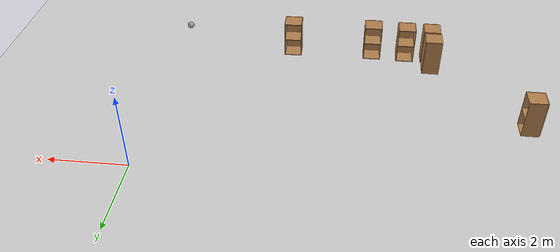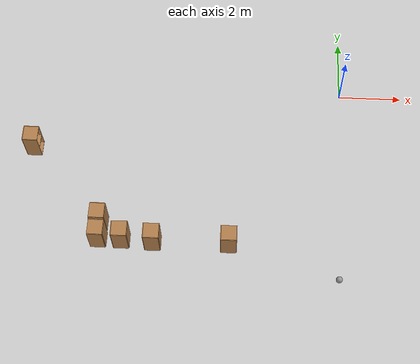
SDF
<sdf version="1.6">
 <world name="default">
  <model name="ground_plane">
   <static>1</static>
   <link name="link">
    <collision name="collision">
     <geometry><plane><normal>0 0 1</normal><size>100 100</size></plane></geometry>
     <surface>
      <contact><collide_bitmask>65535</collide_bitmask></contact>
      <friction><ode><mu>100</mu><mu2>50</mu2></ode></friction>
     </surface>
    </collision>
    <visual name="visual">
     <cast_shadows>0</cast_shadows>
     <geometry><plane><normal>0 0 1</normal><size>100 100</size></plane></geometry>
     <material>
      <script><uri>file://media/materials/scripts/gazebo.material</uri><name>Gazebo/Grey</name></script>
     </material>
    </visual>
   </link>
  </model>
  <model name="my_ball">
   <link name="link_0">
    <inertial>
     <mass>1</mass>
     <inertia><ixx>0.1</ixx><ixy>0</ixy><ixz>0</ixz><iyy>0.1</iyy><iyz>0</iyz><izz>0.1</izz></inertia>
    </inertial>
    <visual name="visual">
     <geometry><sphere><radius>0.1</radius></sphere></geometry>
     <material>
      <lighting>1</lighting>
      <script><uri>file://media/materials/scripts/gazebo.material</uri><name>Gazebo/Grey</name></script>
      <shader type="pixel"><normal_map>__default__</normal_map></shader>
      <ambient>1 1 1 1</ambient>
      <diffuse>1 1 1 1</diffuse>
      <specular>1 1 1 1</specular>
      <emissive>1 1 1 1</emissive>
     </material>
    </visual>
    <collision name="collision">
     <geometry><sphere><radius>0.1</radius></sphere></geometry>
     <surface>
      <friction>
       <ode><mu>1</mu><mu2>1</mu2><fdir1>0 0 0</fdir1><slip1>0</slip1><slip2>0</slip2></ode>
       <torsional>
        <coefficient>1</coefficient>
        <patch_radius>0</patch_radius>
        <surface_radius>0</surface_radius>
        <use_patch_radius>1</use_patch_radius>
        <ode><slip>0</slip></ode>
       </torsional>
      </friction>
      <bounce><restitution_coefficient>0</restitution_coefficient><threshold>1e+06</threshold></bounce>
      <contact>
       <collide_without_contact>0</collide_without_contact>
       <collide_without_contact_bitmask>1</collide_without_contact_bitmask>
       <collide_bitmask>1</collide_bitmask>
       <ode>
        <soft_cfm>0</soft_cfm>
        <soft_erp>0.2</soft_erp>
        <kp>1e+13</kp>
        <kd>1</kd>
        <max_vel>0.01</max_vel>
        <min_depth>0</min_depth>
       </ode>
       <bullet>
        <split_impulse>1</split_impulse>
        <split_impulse_penetration_threshold>-0.01</split_impulse_penetration_threshold>
        <soft_cfm>0</soft_cfm>
        <soft_erp>0.2</soft_erp>
        <kp>1e+13</kp>
        <kd>1</kd>
       </bullet>
      </contact>
     </surface>
    </collision>
   </link>
   <static>0</static>
   <pose>-0.063313 -6.29343 0.1 0 -0 0</pose>
  </model>
  <model name="cabinet_clone_clone">
   <static>1</static>
   <link name="cabinet_bottom_plate">
    <inertial>
     <pose>0 0 -1 0 -0 0</pose>
     <inertia><ixx>2.05</ixx><ixy>0</ixy><ixz>0</ixz><iyy>2.05</iyy><iyz>0</iyz><izz>2.05</izz></inertia>
     <mass>25</mass>
    </inertial>
    <collision name="cabinet_bottom_plate_geom">
     <pose>0 0 0.01 0 -0 0</pose>
     <geometry><box><size>0.45 0.45 0.02</size></box></geometry>
    </collision>
    <visual name="cabinet_bottom_plate_geom_visual">
     <pose>0 0 0.01 0 -0 0</pose>
     <geometry><box><size>0.45 0.45 0.02</size></box></geometry>
     <material>
      <script><uri>file://media/materials/scripts/gazebo.material</uri><name>Gazebo/Wood</name></script>
     </material>
    </visual>
    <collision name="cabinet_bottom_plate_geom_cabinet_back_plate">
     <pose>0.235 0 0.51 0 -0 0</pose>
     <geometry><box><size>0.02 0.45 1.02</size></box></geometry>
    </collision>
    <visual name="cabinet_bottom_plate_geom_cabinet_back_plate_visual">
     <pose>0.235 0 0.51 0 -0 0</pose>
     <geometry><box><size>0.02 0.45 1.02</size></box></geometry>
     <material>
      <script><uri>file://media/materials/scripts/gazebo.material</uri><name>Gazebo/Wood</name></script>
     </material>
    </visual>
    <collision name="cabinet_bottom_plate_geom_cabinet_left_plate">
     <pose>0 0.235 0.51 0 -0 0</pose>
     <geometry><box><size>0.45 0.02 1.02</size></box></geometry>
    </collision>
    <visual name="cabinet_bottom_plate_geom_cabinet_left_plate_visual">
     <pose>0 0.235 0.51 0 -0 0</pose>
     <geometry><box><size>0.45 0.02 1.02</size></box></geometry>
     <material>
      <script><uri>file://media/materials/scripts/gazebo.material</uri><name>Gazebo/Wood</name></script>
     </material>
    </visual>
    <collision name="cabinet_bottom_plate_geom_cabinet_middle_plate">
     <pose>0 0 0.51 0 -0 0</pose>
     <geometry><box><size>0.45 0.45 0.02</size></box></geometry>
    </collision>
    <visual name="cabinet_bottom_plate_geom_cabinet_middle_plate_visual">
     <pose>0 0 0.51 0 -0 0</pose>
     <geometry><box><size>0.45 0.45 0.02</size></box></geometry>
     <material>
      <script><uri>file://media/materials/scripts/gazebo.material</uri><name>Gazebo/Wood</name></script>
     </material>
    </visual>
    <collision name="cabinet_bottom_plate_geom_cabinet_right_plate">
     <pose>0 -0.235 0.51 0 -0 0</pose>
     <geometry><box><size>0.45 0.02 1.02</size></box></geometry>
    </collision>
    <visual name="cabinet_bottom_plate_geom_cabinet_right_plate_visual">
     <pose>0 -0.235 0.51 0 -0 0</pose>
     <geometry><box><size>0.45 0.02 1.02</size></box></geometry>
     <material>
      <script><uri>file://media/materials/scripts/gazebo.material</uri><name>Gazebo/Wood</name></script>
     </material>
    </visual>
    <collision name="cabinet_bottom_plate_geom_cabinet_top_plate">
     <pose>0 0 1.01 0 -0 0</pose>
     <geometry><box><size>0.45 0.45 0.02</size></box></geometry>
    </collision>
    <visual name="cabinet_bottom_plate_geom_cabinet_top_plate_visual">
     <pose>0 0 1.01 0 -0 0</pose>
     <geometry><box><size>0.45 0.45 0.02</size></box></geometry>
     <material>
      <script><uri>file://media/materials/scripts/gazebo.material</uri><name>Gazebo/Wood</name></script>
     </material>
    </visual>
   </link>
   <pose>-9.62196 -2.30495 0 0 -0 3.1415</pose>
  </model>
  <model name="cabinet_clone_clone_0">
   <static>1</static>
   <link name="cabinet_bottom_plate">
    <inertial>
     <pose>0 0 -1 0 -0 0</pose>
     <inertia><ixx>2.05</ixx><ixy>0</ixy><ixz>0</ixz><iyy>2.05</iyy><iyz>0</iyz><izz>2.05</izz></inertia>
     <mass>25</mass>
    </inertial>
    <collision name="cabinet_bottom_plate_geom">
     <pose>0 0 0.01 0 -0 0</pose>
     <geometry><box><size>0.45 0.45 0.02</size></box></geometry>
    </collision>
    <visual name="cabinet_bottom_plate_geom_visual">
     <pose>0 0 0.01 0 -0 0</pose>
     <geometry><box><size>0.45 0.45 0.02</size></box></geometry>
     <material>
      <script><uri>file://media/materials/scripts/gazebo.material</uri><name>Gazebo/Wood</name></script>
     </material>
    </visual>
    <collision name="cabinet_bottom_plate_geom_cabinet_back_plate">
     <pose>0.235 0 0.51 0 -0 0</pose>
     <geometry><box><size>0.02 0.45 1.02</size></box></geometry>
    </collision>
    <visual name="cabinet_bottom_plate_geom_cabinet_back_plate_visual">
     <pose>0.235 0 0.51 0 -0 0</pose>
     <geometry><box><size>0.02 0.45 1.02</size></box></geometry>
     <material>
      <script><uri>file://media/materials/scripts/gazebo.material</uri><name>Gazebo/Wood</name></script>
     </material>
    </visual>
    <collision name="cabinet_bottom_plate_geom_cabinet_left_plate">
     <pose>0 0.235 0.51 0 -0 0</pose>
     <geometry><box><size>0.45 0.02 1.02</size></box></geometry>
    </collision>
    <visual name="cabinet_bottom_plate_geom_cabinet_left_plate_visual">
     <pose>0 0.235 0.51 0 -0 0</pose>
     <geometry><box><size>0.45 0.02 1.02</size></box></geometry>
     <material>
      <script><uri>file://media/materials/scripts/gazebo.material</uri><name>Gazebo/Wood</name></script>
     </material>
    </visual>
    <collision name="cabinet_bottom_plate_geom_cabinet_middle_plate">
     <pose>0 0 0.51 0 -0 0</pose>
     <geometry><box><size>0.45 0.45 0.02</size></box></geometry>
    </collision>
    <visual name="cabinet_bottom_plate_geom_cabinet_middle_plate_visual">
     <pose>0 0 0.51 0 -0 0</pose>
     <geometry><box><size>0.45 0.45 0.02</size></box></geometry>
     <material>
      <script><uri>file://media/materials/scripts/gazebo.material</uri><name>Gazebo/Wood</name></script>
     </material>
    </visual>
    <collision name="cabinet_bottom_plate_geom_cabinet_right_plate">
     <pose>0 -0.235 0.51 0 -0 0</pose>
     <geometry><box><size>0.45 0.02 1.02</size></box></geometry>
    </collision>
    <visual name="cabinet_bottom_plate_geom_cabinet_right_plate_visual">
     <pose>0 -0.235 0.51 0 -0 0</pose>
     <geometry><box><size>0.45 0.02 1.02</size></box></geometry>
     <material>
      <script><uri>file://media/materials/scripts/gazebo.material</uri><name>Gazebo/Wood</name></script>
     </material>
    </visual>
    <collision name="cabinet_bottom_plate_geom_cabinet_top_plate">
     <pose>0 0 1.01 0 -0 0</pose>
     <geometry><box><size>0.45 0.45 0.02</size></box></geometry>
    </collision>
    <visual name="cabinet_bottom_plate_geom_cabinet_top_plate_visual">
     <pose>0 0 1.01 0 -0 0</pose>
     <geometry><box><size>0.45 0.45 0.02</size></box></geometry>
     <material>
      <script><uri>file://media/materials/scripts/gazebo.material</uri><name>Gazebo/Wood</name></script>
     </material>
    </visual>
   </link>
   <pose>-7.30602 -5.31161 0 0 0 -0.007029</pose>
  </model>
  <model name="cabinet_clone_clone_0_clone">
   <static>1</static>
   <link name="cabinet_bottom_plate">
    <inertial>
     <pose>0 0 -1 0 -0 0</pose>
     <inertia><ixx>2.05</ixx><ixy>0</ixy><ixz>0</ixz><iyy>2.05</iyy><iyz>0</iyz><izz>2.05</izz></inertia>
     <mass>25</mass>
    </inertial>
    <collision name="cabinet_bottom_plate_geom">
     <pose>0 0 0.01 0 -0 0</pose>
     <geometry><box><size>0.45 0.45 0.02</size></box></geometry>
    </collision>
    <visual name="cabinet_bottom_plate_geom_visual">
     <pose>0 0 0.01 0 -0 0</pose>
     <geometry><box><size>0.45 0.45 0.02</size></box></geometry>
     <material>
      <script><uri>file://media/materials/scripts/gazebo.material</uri><name>Gazebo/Wood</name></script>
     </material>
    </visual>
    <collision name="cabinet_bottom_plate_geom_cabinet_back_plate">
     <pose>0.235 0 0.51 0 -0 0</pose>
     <geometry><box><size>0.02 0.45 1.02</size></box></geometry>
    </collision>
    <visual name="cabinet_bottom_plate_geom_cabinet_back_plate_visual">
     <pose>0.235 0 0.51 0 -0 0</pose>
     <geometry><box><size>0.02 0.45 1.02</size></box></geometry>
     <material>
      <script><uri>file://media/materials/scripts/gazebo.material</uri><name>Gazebo/Wood</name></script>
     </material>
    </visual>
    <collision name="cabinet_bottom_plate_geom_cabinet_left_plate">
     <pose>0 0.235 0.51 0 -0 0</pose>
     <geometry><box><size>0.45 0.02 1.02</size></box></geometry>
    </collision>
    <visual name="cabinet_bottom_plate_geom_cabinet_left_plate_visual">
     <pose>0 0.235 0.51 0 -0 0</pose>
     <geometry><box><size>0.45 0.02 1.02</size></box></geometry>
     <material>
      <script><uri>file://media/materials/scripts/gazebo.material</uri><name>Gazebo/Wood</name></script>
     </material>
    </visual>
    <collision name="cabinet_bottom_plate_geom_cabinet_middle_plate">
     <pose>0 0 0.51 0 -0 0</pose>
     <geometry><box><size>0.45 0.45 0.02</size></box></geometry>
    </collision>
    <visual name="cabinet_bottom_plate_geom_cabinet_middle_plate_visual">
     <pose>0 0 0.51 0 -0 0</pose>
     <geometry><box><size>0.45 0.45 0.02</size></box></geometry>
     <material>
      <script><uri>file://media/materials/scripts/gazebo.material</uri><name>Gazebo/Wood</name></script>
     </material>
    </visual>
    <collision name="cabinet_bottom_plate_geom_cabinet_right_plate">
     <pose>0 -0.235 0.51 0 -0 0</pose>
     <geometry><box><size>0.45 0.02 1.02</size></box></geometry>
    </collision>
    <visual name="cabinet_bottom_plate_geom_cabinet_right_plate_visual">
     <pose>0 -0.235 0.51 0 -0 0</pose>
     <geometry><box><size>0.45 0.02 1.02</size></box></geometry>
     <material>
      <script><uri>file://media/materials/scripts/gazebo.material</uri><name>Gazebo/Wood</name></script>
     </material>
    </visual>
    <collision name="cabinet_bottom_plate_geom_cabinet_top_plate">
     <pose>0 0 1.01 0 -0 0</pose>
     <geometry><box><size>0.45 0.45 0.02</size></box></geometry>
    </collision>
    <visual name="cabinet_bottom_plate_geom_cabinet_top_plate_visual">
     <pose>0 0 1.01 0 -0 0</pose>
     <geometry><box><size>0.45 0.45 0.02</size></box></geometry>
     <material>
      <script><uri>file://media/materials/scripts/gazebo.material</uri><name>Gazebo/Wood</name></script>
     </material>
    </visual>
   </link>
   <pose>-7.31812 -4.78176 0 0 0 -0.007029</pose>
  </model>
  <model name="cabinet_clone_clone_0_clone_0">
   <static>1</static>
   <link name="cabinet_bottom_plate">
    <inertial>
     <pose>0 0 -1 0 -0 0</pose>
     <inertia><ixx>2.05</ixx><ixy>0</ixy><ixz>0</ixz><iyy>2.05</iyy><iyz>0</iyz><izz>2.05</izz></inertia>
     <mass>25</mass>
    </inertial>
    <collision name="cabinet_bottom_plate_geom">
     <pose>0 0 0.01 0 -0 0</pose>
     <geometry><box><size>0.45 0.45 0.02</size></box></geometry>
    </collision>
    <visual name="cabinet_bottom_plate_geom_visual">
     <pose>0 0 0.01 0 -0 0</pose>
     <geometry><box><size>0.45 0.45 0.02</size></box></geometry>
     <material>
      <script><uri>file://media/materials/scripts/gazebo.material</uri><name>Gazebo/Wood</name></script>
     </material>
    </visual>
    <collision name="cabinet_bottom_plate_geom_cabinet_back_plate">
     <pose>0.235 0 0.51 0 -0 0</pose>
     <geometry><box><size>0.02 0.45 1.02</size></box></geometry>
    </collision>
    <visual name="cabinet_bottom_plate_geom_cabinet_back_plate_visual">
     <pose>0.235 0 0.51 0 -0 0</pose>
     <geometry><box><size>0.02 0.45 1.02</size></box></geometry>
     <material>
      <script><uri>file://media/materials/scripts/gazebo.material</uri><name>Gazebo/Wood</name></script>
     </material>
    </visual>
    <collision name="cabinet_bottom_plate_geom_cabinet_left_plate">
     <pose>0 0.235 0.51 0 -0 0</pose>
     <geometry><box><size>0.45 0.02 1.02</size></box></geometry>
    </collision>
    <visual name="cabinet_bottom_plate_geom_cabinet_left_plate_visual">
     <pose>0 0.235 0.51 0 -0 0</pose>
     <geometry><box><size>0.45 0.02 1.02</size></box></geometry>
     <material>
      <script><uri>file://media/materials/scripts/gazebo.material</uri><name>Gazebo/Wood</name></script>
     </material>
    </visual>
    <collision name="cabinet_bottom_plate_geom_cabinet_middle_plate">
     <pose>0 0 0.51 0 -0 0</pose>
     <geometry><box><size>0.45 0.45 0.02</size></box></geometry>
    </collision>
    <visual name="cabinet_bottom_plate_geom_cabinet_middle_plate_visual">
     <pose>0 0 0.51 0 -0 0</pose>
     <geometry><box><size>0.45 0.45 0.02</size></box></geometry>
     <material>
      <script><uri>file://media/materials/scripts/gazebo.material</uri><name>Gazebo/Wood</name></script>
     </material>
    </visual>
    <collision name="cabinet_bottom_plate_geom_cabinet_right_plate">
     <pose>0 -0.235 0.51 0 -0 0</pose>
     <geometry><box><size>0.45 0.02 1.02</size></box></geometry>
    </collision>
    <visual name="cabinet_bottom_plate_geom_cabinet_right_plate_visual">
     <pose>0 -0.235 0.51 0 -0 0</pose>
     <geometry><box><size>0.45 0.02 1.02</size></box></geometry>
     <material>
      <script><uri>file://media/materials/scripts/gazebo.material</uri><name>Gazebo/Wood</name></script>
     </material>
    </visual>
    <collision name="cabinet_bottom_plate_geom_cabinet_top_plate">
     <pose>0 0 1.01 0 -0 0</pose>
     <geometry><box><size>0.45 0.45 0.02</size></box></geometry>
    </collision>
    <visual name="cabinet_bottom_plate_geom_cabinet_top_plate_visual">
     <pose>0 0 1.01 0 -0 0</pose>
     <geometry><box><size>0.45 0.45 0.02</size></box></geometry>
     <material>
      <script><uri>file://media/materials/scripts/gazebo.material</uri><name>Gazebo/Wood</name></script>
     </material>
    </visual>
   </link>
   <pose>-5.65906 -5.34796 0 0 0 -1.55724</pose>
  </model>
  <model name="cabinet_clone_clone_0_clone_0_clone">
   <static>1</static>
   <link name="cabinet_bottom_plate">
    <inertial>
     <pose>0 0 -1 0 -0 0</pose>
     <inertia><ixx>2.05</ixx><ixy>0</ixy><ixz>0</ixz><iyy>2.05</iyy><iyz>0</iyz><izz>2.05</izz></inertia>
     <mass>25</mass>
    </inertial>
    <collision name="cabinet_bottom_plate_geom">
     <pose>0 0 0.01 0 -0 0</pose>
     <geometry><box><size>0.45 0.45 0.02</size></box></geometry>
    </collision>
    <visual name="cabinet_bottom_plate_geom_visual">
     <pose>0 0 0.01 0 -0 0</pose>
     <geometry><box><size>0.45 0.45 0.02</size></box></geometry>
     <material>
      <script><uri>file://media/materials/scripts/gazebo.material</uri><name>Gazebo/Wood</name></script>
     </material>
    </visual>
    <collision name="cabinet_bottom_plate_geom_cabinet_back_plate">
     <pose>0.235 0 0.51 0 -0 0</pose>
     <geometry><box><size>0.02 0.45 1.02</size></box></geometry>
    </collision>
    <visual name="cabinet_bottom_plate_geom_cabinet_back_plate_visual">
     <pose>0.235 0 0.51 0 -0 0</pose>
     <geometry><box><size>0.02 0.45 1.02</size></box></geometry>
     <material>
      <script><uri>file://media/materials/scripts/gazebo.material</uri><name>Gazebo/Wood</name></script>
     </material>
    </visual>
    <collision name="cabinet_bottom_plate_geom_cabinet_left_plate">
     <pose>0 0.235 0.51 0 -0 0</pose>
     <geometry><box><size>0.45 0.02 1.02</size></box></geometry>
    </collision>
    <visual name="cabinet_bottom_plate_geom_cabinet_left_plate_visual">
     <pose>0 0.235 0.51 0 -0 0</pose>
     <geometry><box><size>0.45 0.02 1.02</size></box></geometry>
     <material>
      <script><uri>file://media/materials/scripts/gazebo.material</uri><name>Gazebo/Wood</name></script>
     </material>
    </visual>
    <collision name="cabinet_bottom_plate_geom_cabinet_middle_plate">
     <pose>0 0 0.51 0 -0 0</pose>
     <geometry><box><size>0.45 0.45 0.02</size></box></geometry>
    </collision>
    <visual name="cabinet_bottom_plate_geom_cabinet_middle_plate_visual">
     <pose>0 0 0.51 0 -0 0</pose>
     <geometry><box><size>0.45 0.45 0.02</size></box></geometry>
     <material>
      <script><uri>file://media/materials/scripts/gazebo.material</uri><name>Gazebo/Wood</name></script>
     </material>
    </visual>
    <collision name="cabinet_bottom_plate_geom_cabinet_right_plate">
     <pose>0 -0.235 0.51 0 -0 0</pose>
     <geometry><box><size>0.45 0.02 1.02</size></box></geometry>
    </collision>
    <visual name="cabinet_bottom_plate_geom_cabinet_right_plate_visual">
     <pose>0 -0.235 0.51 0 -0 0</pose>
     <geometry><box><size>0.45 0.02 1.02</size></box></geometry>
     <material>
      <script><uri>file://media/materials/scripts/gazebo.material</uri><name>Gazebo/Wood</name></script>
     </material>
    </visual>
    <collision name="cabinet_bottom_plate_geom_cabinet_top_plate">
     <pose>0 0 1.01 0 -0 0</pose>
     <geometry><box><size>0.45 0.45 0.02</size></box></geometry>
    </collision>
    <visual name="cabinet_bottom_plate_geom_cabinet_top_plate_visual">
     <pose>0 0 1.01 0 -0 0</pose>
     <geometry><box><size>0.45 0.45 0.02</size></box></geometry>
     <material>
      <script><uri>file://media/materials/scripts/gazebo.material</uri><name>Gazebo/Wood</name></script>
     </material>
    </visual>
   </link>
   <pose>-6.60313 -5.31813 0 0 0 -1.55724</pose>
  </model>
  <model name="cabinet_clone_clone_0_clone_0_clone_0">
   <static>1</static>
   <link name="cabinet_bottom_plate">
    <inertial>
     <pose>0 0 -1 0 -0 0</pose>
     <inertia><ixx>2.05</ixx><ixy>0</ixy><ixz>0</ixz><iyy>2.05</iyy><iyz>0</iyz><izz>2.05</izz></inertia>
     <mass>25</mass>
    </inertial>
    <collision name="cabinet_bottom_plate_geom">
     <pose>0 0 0.01 0 -0 0</pose>
     <geometry><box><size>0.45 0.45 0.02</size></box></geometry>
    </collision>
    <visual name="cabinet_bottom_plate_geom_visual">
     <pose>0 0 0.01 0 -0 0</pose>
     <geometry><box><size>0.45 0.45 0.02</size></box></geometry>
     <material>
      <script><uri>file://media/materials/scripts/gazebo.material</uri><name>Gazebo/Wood</name></script>
     </material>
    </visual>
    <collision name="cabinet_bottom_plate_geom_cabinet_back_plate">
     <pose>0.235 0 0.51 0 -0 0</pose>
     <geometry><box><size>0.02 0.45 1.02</size></box></geometry>
    </collision>
    <visual name="cabinet_bottom_plate_geom_cabinet_back_plate_visual">
     <pose>0.235 0 0.51 0 -0 0</pose>
     <geometry><box><size>0.02 0.45 1.02</size></box></geometry>
     <material>
      <script><uri>file://media/materials/scripts/gazebo.material</uri><name>Gazebo/Wood</name></script>
     </material>
    </visual>
    <collision name="cabinet_bottom_plate_geom_cabinet_left_plate">
     <pose>0 0.235 0.51 0 -0 0</pose>
     <geometry><box><size>0.45 0.02 1.02</size></box></geometry>
    </collision>
    <visual name="cabinet_bottom_plate_geom_cabinet_left_plate_visual">
     <pose>0 0.235 0.51 0 -0 0</pose>
     <geometry><box><size>0.45 0.02 1.02</size></box></geometry>
     <material>
      <script><uri>file://media/materials/scripts/gazebo.material</uri><name>Gazebo/Wood</name></script>
     </material>
    </visual>
    <collision name="cabinet_bottom_plate_geom_cabinet_middle_plate">
     <pose>0 0 0.51 0 -0 0</pose>
     <geometry><box><size>0.45 0.45 0.02</size></box></geometry>
    </collision>
    <visual name="cabinet_bottom_plate_geom_cabinet_middle_plate_visual">
     <pose>0 0 0.51 0 -0 0</pose>
     <geometry><box><size>0.45 0.45 0.02</size></box></geometry>
     <material>
      <script><uri>file://media/materials/scripts/gazebo.material</uri><name>Gazebo/Wood</name></script>
     </material>
    </visual>
    <collision name="cabinet_bottom_plate_geom_cabinet_right_plate">
     <pose>0 -0.235 0.51 0 -0 0</pose>
     <geometry><box><size>0.45 0.02 1.02</size></box></geometry>
    </collision>
    <visual name="cabinet_bottom_plate_geom_cabinet_right_plate_visual">
     <pose>0 -0.235 0.51 0 -0 0</pose>
     <geometry><box><size>0.45 0.02 1.02</size></box></geometry>
     <material>
      <script><uri>file://media/materials/scripts/gazebo.material</uri><name>Gazebo/Wood</name></script>
     </material>
    </visual>
    <collision name="cabinet_bottom_plate_geom_cabinet_top_plate">
     <pose>0 0 1.01 0 -0 0</pose>
     <geometry><box><size>0.45 0.45 0.02</size></box></geometry>
    </collision>
    <visual name="cabinet_bottom_plate_geom_cabinet_top_plate_visual">
     <pose>0 0 1.01 0 -0 0</pose>
     <geometry><box><size>0.45 0.45 0.02</size></box></geometry>
     <material>
      <script><uri>file://media/materials/scripts/gazebo.material</uri><name>Gazebo/Wood</name></script>
     </material>
    </visual>
   </link>
   <pose>-3.37408 -5.31914 0 0 0 -1.55724</pose>
  </model>
 </world>
</sdf>
